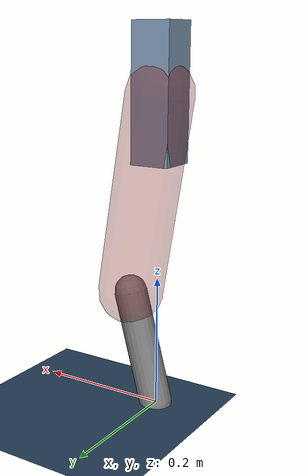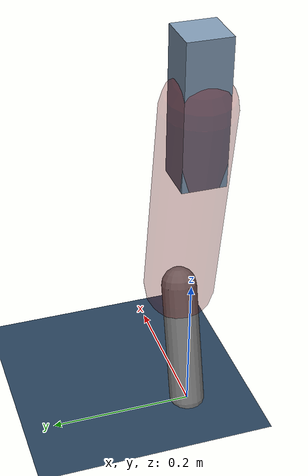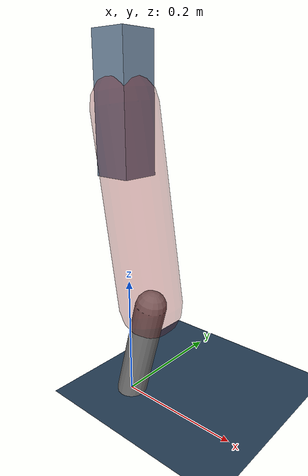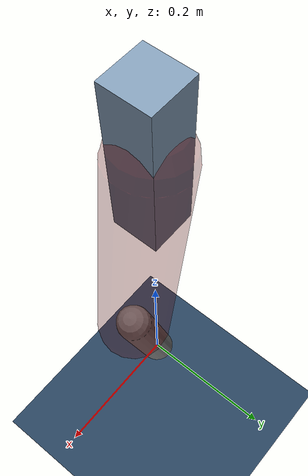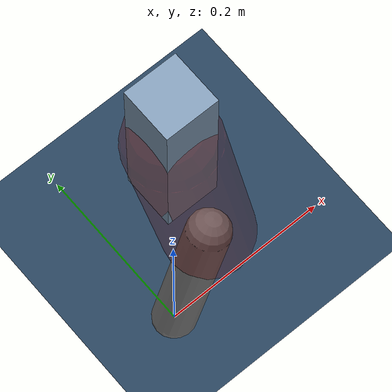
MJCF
<mujoco model="Hopper2D">
	<compiler inertiafromgeom="true" angle="radian" />
	<option timestep="0.001" integrator="implicit" cone="elliptic" solver="Newton" tolerance="1e-10" />

	<default>
		<geom contype="1" conaffinity="1" condim="3" friction="2 0.005 0.0001" solref="0.005 1" />
		<joint limited="true" damping="0.1" />
	</default>

	<asset>
		<texture name="skybox" type="skybox" builtin="gradient" rgb1=".4 .6 .8" rgb2="0 0 0" width="800" height="800" />
		<texture name="grid" type="2d" builtin="checker" rgb1=".1 .2 .3" rgb2=".2 .3 .4" width="300" height="300" mark="edge" markrgb=".2 .3 .4" />
		<material name="ground" texture="grid" texrepeat="1 1" texuniform="true" reflectance="0.1" />
		<material name="leg" rgba="0.5 0.6 0.7 1" />
	</asset>

	<worldbody>

		<geom name="floor" type="plane" size="5 5 0.25" material="ground" />

		<light directional="false" diffuse="0.8 0.8 0.8" specular="0.3 0.3 0.3" pos="0 0 2" dir="0 0 -1" />
		<light mode="targetbodycom" target="base" directional="false" diffuse="0.8 0.8 0.8" specular="0.3 0.3 0.3" pos="0 0 2" dir="0 0 -1" />

		<camera name="fixed" pos="0 -2 1" xyaxes="1 0 0 0 0 1" />
		<camera name="tracking" mode="trackcom" pos="0 -3 1" />

		<body name="root" pos="0 0 0.4727775112287375">
			<joint name="slide_x" type="slide" axis="1 0 0" range="-100 100" />
			<joint name="slide_z" type="slide" axis="0 0 1" range="0 10" />

			<body name="base" pos="0 0 0">
				<geom name="torso" type="box" size="0.03 0.03 0.1" mass="2.084" material="leg" />

				<body name="link1" pos="0 0 0" euler="0 1.4148636918535893 0">
					<joint type="hinge" axis="0 -1 0" pos="0 0 0" name="hinge1" limited="true" range="-3.14 3.14" stiffness="0" damping="0.1" />
					<geom name="thigh" type="capsule" fromto="0 0 0 0.3036177450109593 0 0" size="0.05" rgba="0.5 0 0 0.3" mass="0.9985679115295901" />

					<body name="link2" pos="0.3036177450109593 0 0" euler="0 0.4222554647412464 0">
						<joint type="hinge" axis="0 -1 0" pos="0 0 0" name="hinge2" limited="true" range="-3.14 3.14" stiffness="0" damping="0.1" />
						<geom name="shank" type="capsule" fromto="0 0 0 0.17915976621777824 0 0" size="0.025" mass="0.38314378959600043" />

					</body>
				</body>
			</body>
		</body>
	</worldbody>

	<actuator>
		<motor name="torque1" joint="hinge1" ctrlrange="-59.50649044798527 59.50649044798527" ctrllimited="true" gear="1" />
		<motor name="torque2" joint="hinge2" ctrlrange="-74.15676458723519 74.15676458723519" ctrllimited="true" gear="1" />
	</actuator>
</mujoco>
